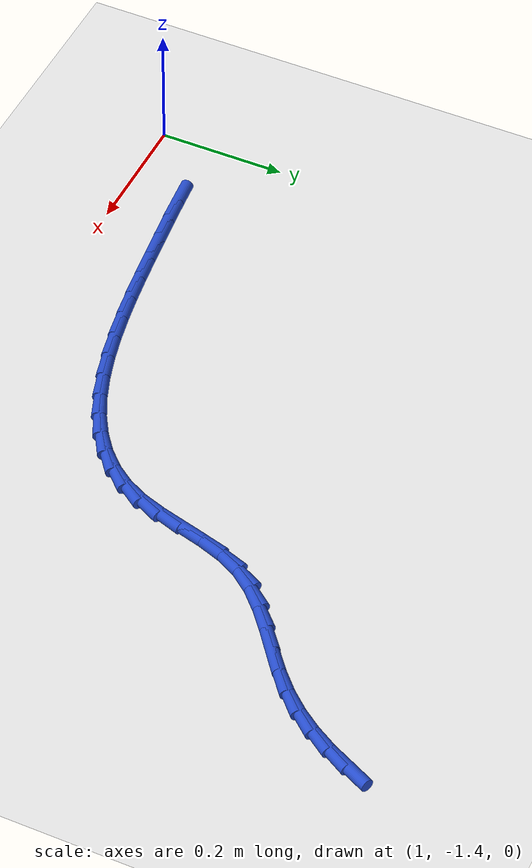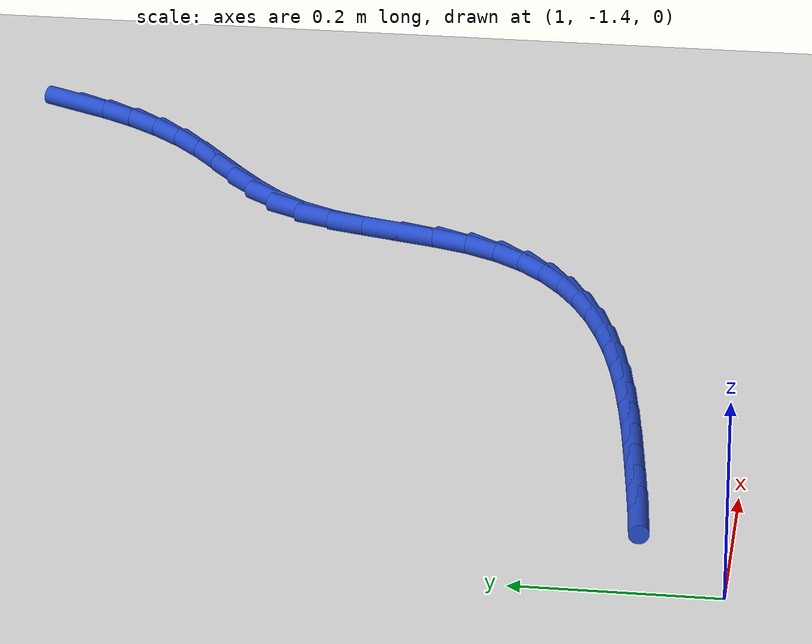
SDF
<sdf version="1.6">
 <world name="default">
  <model name="ground_plane">
   <static>1</static>
   <link name="link">
    <collision name="collision">
     <geometry><plane><normal>0 0 1</normal><size>100 100</size></plane></geometry>
     <surface><friction><ode><mu>100</mu><mu2>50</mu2></ode></friction></surface>
    </collision>
    <visual name="visual">
     <cast_shadows>0</cast_shadows>
     <geometry><plane><normal>0 0 1</normal><size>100 100</size></plane></geometry>
     <material>
      <script><uri>file://media/materials/scripts/gazebo.material</uri><name>Gazebo/WhiteGlow</name></script>
     </material>
    </visual>
   </link>
  </model>
  <model name="line">
   <link name="link_110">
    <pose>2.030792131386796 -0.6210621675817639 0.01 0 1.57 1.1239168759637137</pose>
    <collision name="collision">
     <geometry><cylinder><radius>0.01</radius><length>0.08</length></cylinder></geometry>
    </collision>
    <visual name="visual">
     <material>
      <script><name>Gazebo/Blue</name><uri>file://media/materials/scripts/gazebo.material</uri></script>
     </material>
     <geometry><cylinder><radius>0.01</radius><length>0.08</length></cylinder></geometry>
    </visual>
   </link>
   <link name="link_111">
    <pose>2.014340867695228 -0.6553919816335887 0.01 0 1.57 1.0438205597238692</pose>
    <collision name="collision">
     <geometry><cylinder><radius>0.01</radius><length>0.08</length></cylinder></geometry>
    </collision>
    <visual name="visual">
     <material>
      <script><name>Gazebo/Blue</name><uri>file://media/materials/scripts/gazebo.material</uri></script>
     </material>
     <geometry><cylinder><radius>0.01</radius><length>0.08</length></cylinder></geometry>
    </visual>
   </link>
   <link name="link_112">
    <pose>1.9953514913226962 -0.68802752912348 0.01 0 1.57 0.9535486442471789</pose>
    <collision name="collision">
     <geometry><cylinder><radius>0.01</radius><length>0.08</length></cylinder></geometry>
    </collision>
    <visual name="visual">
     <material>
      <script><name>Gazebo/Blue</name><uri>file://media/materials/scripts/gazebo.material</uri></script>
     </material>
     <geometry><cylinder><radius>0.01</radius><length>0.08</length></cylinder></geometry>
    </visual>
   </link>
   <link name="link_113">
    <pose>1.9735434283943016 -0.718753407592466 0.01 0 1.57 0.85431543339839</pose>
    <collision name="collision">
     <geometry><cylinder><radius>0.01</radius><length>0.08</length></cylinder></geometry>
    </collision>
    <visual name="visual">
     <material>
      <script><name>Gazebo/Blue</name><uri>file://media/materials/scripts/gazebo.material</uri></script>
     </material>
     <geometry><cylinder><radius>0.01</radius><length>0.08</length></cylinder></geometry>
    </visual>
   </link>
   <link name="link_114">
    <pose>1.948636105035143 -0.7473542145815713 0.01 0 1.57 0.7507832722630146</pose>
    <collision name="collision">
     <geometry><cylinder><radius>0.01</radius><length>0.08</length></cylinder></geometry>
    </collision>
    <visual name="visual">
     <material>
      <script><name>Gazebo/Blue</name><uri>file://media/materials/scripts/gazebo.material</uri></script>
     </material>
     <geometry><cylinder><radius>0.01</radius><length>0.08</length></cylinder></geometry>
    </visual>
   </link>
   <link name="link_115">
    <pose>1.9204306006758038 -0.7736716588637779 0.01 0 1.57 0.6779471716496512</pose>
    <collision name="collision">
     <geometry><cylinder><radius>0.01</radius><length>0.08</length></cylinder></geometry>
    </collision>
    <visual name="visual">
     <material>
      <script><name>Gazebo/Blue</name><uri>file://media/materials/scripts/gazebo.material</uri></script>
     </material>
     <geometry><cylinder><radius>0.01</radius><length>0.08</length></cylinder></geometry>
    </visual>
   </link>
   <link name="link_116">
    <pose>1.8898268281888364 -0.7983160124834981 0.01 0 1.57 0.6565695907384311</pose>
    <collision name="collision">
     <geometry><cylinder><radius>0.01</radius><length>0.08</length></cylinder></geometry>
    </collision>
    <visual name="visual">
     <material>
      <script><name>Gazebo/Blue</name><uri>file://media/materials/scripts/gazebo.material</uri></script>
     </material>
     <geometry><cylinder><radius>0.01</radius><length>0.08</length></cylinder></geometry>
    </visual>
   </link>
   <link name="link_117">
    <pose>1.858511809860532 -0.8224480798614734 0.01 0 1.57 0.6854046236780491</pose>
    <collision name="collision">
     <geometry><cylinder><radius>0.01</radius><length>0.08</length></cylinder></geometry>
    </collision>
    <visual name="visual">
     <material>
      <script><name>Gazebo/Blue</name><uri>file://media/materials/scripts/gazebo.material</uri></script>
     </material>
     <geometry><cylinder><radius>0.01</radius><length>0.08</length></cylinder></geometry>
    </visual>
   </link>
   <link name="link_118">
    <pose>1.8281896928328079 -0.847240643152794 0.01 0 1.57 0.7669816196945624</pose>
    <collision name="collision">
     <geometry><cylinder><radius>0.01</radius><length>0.08</length></cylinder></geometry>
    </collision>
    <visual name="visual">
     <material>
      <script><name>Gazebo/Blue</name><uri>file://media/materials/scripts/gazebo.material</uri></script>
     </material>
     <geometry><cylinder><radius>0.01</radius><length>0.08</length></cylinder></geometry>
    </visual>
   </link>
   <link name="link_119">
    <pose>1.8005646242475795 -0.8738664845125512 0.01 0 1.57 0.9060454748563066</pose>
    <collision name="collision">
     <geometry><cylinder><radius>0.01</radius><length>0.08</length></cylinder></geometry>
    </collision>
    <visual name="visual">
     <material>
      <script><name>Gazebo/Blue</name><uri>file://media/materials/scripts/gazebo.material</uri></script>
     </material>
     <geometry><cylinder><radius>0.01</radius><length>0.08</length></cylinder></geometry>
    </visual>
   </link>
   <link name="link_120">
    <pose>1.7773407512467643 -0.9034983860958358 0.01 0 1.57 1.0924008980881115</pose>
    <collision name="collision">
     <geometry><cylinder><radius>0.01</radius><length>0.08</length></cylinder></geometry>
    </collision>
    <visual name="visual">
     <material>
      <script><name>Gazebo/Blue</name><uri>file://media/materials/scripts/gazebo.material</uri></script>
     </material>
     <geometry><cylinder><radius>0.01</radius><length>0.08</length></cylinder></geometry>
    </visual>
   </link>
   <link name="link_121">
    <pose>1.7599205660133777 -0.9370909229879482 0.01 0 1.57 1.238586335258625</pose>
    <collision name="collision">
     <geometry><cylinder><radius>0.01</radius><length>0.08</length></cylinder></geometry>
    </collision>
    <visual name="visual">
     <material>
      <script><name>Gazebo/Blue</name><uri>file://media/materials/scripts/gazebo.material</uri></script>
     </material>
     <geometry><cylinder><radius>0.01</radius><length>0.08</length></cylinder></geometry>
    </visual>
   </link>
   <link name="link_122">
    <pose>1.7472488814208817 -0.973820867573469 0.01 0 1.57 1.310309039224659</pose>
    <collision name="collision">
     <geometry><cylinder><radius>0.01</radius><length>0.08</length></cylinder></geometry>
    </collision>
    <visual name="visual">
     <material>
      <script><name>Gazebo/Blue</name><uri>file://media/materials/scripts/gazebo.material</uri></script>
     </material>
     <geometry><cylinder><radius>0.01</radius><length>0.08</length></cylinder></geometry>
    </visual>
   </link>
   <link name="link_123">
    <pose>1.7370728479505804 -1.01199864347168 0.01 0 1.57 1.3144679871416611</pose>
    <collision name="collision">
     <geometry><cylinder><radius>0.01</radius><length>0.08</length></cylinder></geometry>
    </collision>
    <visual name="visual">
     <material>
      <script><name>Gazebo/Blue</name><uri>file://media/materials/scripts/gazebo.material</uri></script>
     </material>
     <geometry><cylinder><radius>0.01</radius><length>0.08</length></cylinder></geometry>
    </visual>
   </link>
   <link name="link_124">
    <pose>1.72713157204014 -1.049928855510758 0.01 0 1.57 1.2497546679443474</pose>
    <collision name="collision">
     <geometry><cylinder><radius>0.01</radius><length>0.08</length></cylinder></geometry>
    </collision>
    <visual name="visual">
     <material>
      <script><name>Gazebo/Blue</name><uri>file://media/materials/scripts/gazebo.material</uri></script>
     </material>
     <geometry><cylinder><radius>0.01</radius><length>0.08</length></cylinder></geometry>
    </visual>
   </link>
   <link name="link_125">
    <pose>1.715164160127222 -1.0859161085188769 0.01 0 1.57 1.1122931364111353</pose>
    <collision name="collision">
     <geometry><cylinder><radius>0.01</radius><length>0.08</length></cylinder></geometry>
    </collision>
    <visual name="visual">
     <material>
      <script><name>Gazebo/Blue</name><uri>file://media/materials/scripts/gazebo.material</uri></script>
     </material>
     <geometry><cylinder><radius>0.01</radius><length>0.08</length></cylinder></geometry>
    </visual>
   </link>
   <link name="link_126">
    <pose>1.6991196862870743 -1.118422047684889 0.01 0 1.57 0.9503992452951348</pose>
    <collision name="collision">
     <geometry><cylinder><radius>0.01</radius><length>0.08</length></cylinder></geometry>
    </collision>
    <visual name="visual">
     <material>
      <script><name>Gazebo/Blue</name><uri>file://media/materials/scripts/gazebo.material</uri></script>
     </material>
     <geometry><cylinder><radius>0.01</radius><length>0.08</length></cylinder></geometry>
    </visual>
   </link>
   <link name="link_127">
    <pose>1.6785982178808825 -1.1471431398305354 0.01 0 1.57 0.7974145459164313</pose>
    <collision name="collision">
     <geometry><cylinder><radius>0.01</radius><length>0.08</length></cylinder></geometry>
    </collision>
    <visual name="visual">
     <material>
      <script><name>Gazebo/Blue</name><uri>file://media/materials/scripts/gazebo.material</uri></script>
     </material>
     <geometry><cylinder><radius>0.01</radius><length>0.08</length></cylinder></geometry>
    </visual>
   </link>
   <link name="link_128">
    <pose>1.653980484830239 -1.1723597299954707 0.01 0 1.57 0.6602185341205669</pose>
    <collision name="collision">
     <geometry><cylinder><radius>0.01</radius><length>0.08</length></cylinder></geometry>
    </collision>
    <visual name="visual">
     <material>
      <script><name>Gazebo/Blue</name><uri>file://media/materials/scripts/gazebo.material</uri></script>
     </material>
     <geometry><cylinder><radius>0.01</radius><length>0.08</length></cylinder></geometry>
    </visual>
   </link>
   <link name="link_129">
    <pose>1.6256518603257202 -1.1943556360432768 0.01 0 1.57 0.5419640523705107</pose>
    <collision name="collision">
     <geometry><cylinder><radius>0.01</radius><length>0.08</length></cylinder></geometry>
    </collision>
    <visual name="visual">
     <material>
      <script><name>Gazebo/Blue</name><uri>file://media/materials/scripts/gazebo.material</uri></script>
     </material>
     <geometry><cylinder><radius>0.01</radius><length>0.08</length></cylinder></geometry>
    </visual>
   </link>
   <link name="link_130">
    <pose>1.5939977175579028 -1.2134146758375375 0.01 0 1.57 0.44282797561085124</pose>
    <collision name="collision">
     <geometry><cylinder><radius>0.01</radius><length>0.08</length></cylinder></geometry>
    </collision>
    <visual name="visual">
     <material>
      <script><name>Gazebo/Blue</name><uri>file://media/materials/scripts/gazebo.material</uri></script>
     </material>
     <geometry><cylinder><radius>0.01</radius><length>0.08</length></cylinder></geometry>
    </visual>
   </link>
   <link name="link_131">
    <pose>1.5594034297173645 -1.2298206672418357 0.01 0 1.57 0.3612666891520093</pose>
    <collision name="collision">
     <geometry><cylinder><radius>0.01</radius><length>0.08</length></cylinder></geometry>
    </collision>
    <visual name="visual">
     <material>
      <script><name>Gazebo/Blue</name><uri>file://media/materials/scripts/gazebo.material</uri></script>
     </material>
     <geometry><cylinder><radius>0.01</radius><length>0.08</length></cylinder></geometry>
    </visual>
   </link>
   <link name="link_132">
    <pose>1.5222543699946818 -1.2438574281197539 0.01 0 1.57 0.2950884023429209</pose>
    <collision name="collision">
     <geometry><cylinder><radius>0.01</radius><length>0.08</length></cylinder></geometry>
    </collision>
    <visual name="visual">
     <material>
      <script><name>Gazebo/Blue</name><uri>file://media/materials/scripts/gazebo.material</uri></script>
     </material>
     <geometry><cylinder><radius>0.01</radius><length>0.08</length></cylinder></geometry>
    </visual>
   </link>
   <link name="link_133">
    <pose>1.4829359115804306 -1.2558087763348753 0.01 0 1.57 0.2420944413560988</pose>
    <collision name="collision">
     <geometry><cylinder><radius>0.01</radius><length>0.08</length></cylinder></geometry>
    </collision>
    <visual name="visual">
     <material>
      <script><name>Gazebo/Blue</name><uri>file://media/materials/scripts/gazebo.material</uri></script>
     </material>
     <geometry><cylinder><radius>0.01</radius><length>0.08</length></cylinder></geometry>
    </visual>
   </link>
   <link name="link_134">
    <pose>1.441833427665188 -1.2659585297507827 0.01 0 1.57 0.2003744474546729</pose>
    <collision name="collision">
     <geometry><cylinder><radius>0.01</radius><length>0.08</length></cylinder></geometry>
    </collision>
    <visual name="visual">
     <material>
      <script><name>Gazebo/Blue</name><uri>file://media/materials/scripts/gazebo.material</uri></script>
     </material>
     <geometry><cylinder><radius>0.01</radius><length>0.08</length></cylinder></geometry>
    </visual>
   </link>
   <link name="link_135">
    <pose>1.3993322914395319 -1.274590506231059 0.01 0 1.57 0.16840281681212324</pose>
    <collision name="collision">
     <geometry><cylinder><radius>0.01</radius><length>0.08</length></cylinder></geometry>
    </collision>
    <visual name="visual">
     <material>
      <script><name>Gazebo/Blue</name><uri>file://media/materials/scripts/gazebo.material</uri></script>
     </material>
     <geometry><cylinder><radius>0.01</radius><length>0.08</length></cylinder></geometry>
    </visual>
   </link>
   <link name="link_136">
    <pose>1.3558178760940383 -1.2819885236392874 0.01 0 1.57 0.14504439122050503</pose>
    <collision name="collision">
     <geometry><cylinder><radius>0.01</radius><length>0.08</length></cylinder></geometry>
    </collision>
    <visual name="visual">
     <material>
      <script><name>Gazebo/Blue</name><uri>file://media/materials/scripts/gazebo.material</uri></script>
     </material>
     <geometry><cylinder><radius>0.01</radius><length>0.08</length></cylinder></geometry>
    </visual>
   </link>
   <link name="link_137">
    <pose>1.311675554819284 -1.2884363998390505 0.01 0 1.57 0.12953027072023898</pose>
    <collision name="collision">
     <geometry><cylinder><radius>0.01</radius><length>0.08</length></cylinder></geometry>
    </collision>
    <visual name="visual">
     <material>
      <script><name>Gazebo/Blue</name><uri>file://media/materials/scripts/gazebo.material</uri></script>
     </material>
     <geometry><cylinder><radius>0.01</radius><length>0.08</length></cylinder></geometry>
    </visual>
   </link>
   <link name="link_138">
    <pose>1.2672907008058463 -1.2942179526939315 0.01 0 1.57 0.12143395670664524</pose>
    <collision name="collision">
     <geometry><cylinder><radius>0.01</radius><length>0.08</length></cylinder></geometry>
    </collision>
    <visual name="visual">
     <material>
      <script><name>Gazebo/Blue</name><uri>file://media/materials/scripts/gazebo.material</uri></script>
     </material>
     <geometry><cylinder><radius>0.01</radius><length>0.08</length></cylinder></geometry>
    </visual>
   </link>
   <link name="link_139">
    <pose>1.2230486872443023 -1.299617000067513 0.01 0 1.57 0.1190533603680602</pose>
    <collision name="collision">
     <geometry><cylinder><radius>0.01</radius><length>0.08</length></cylinder></geometry>
    </collision>
    <visual name="visual">
     <material>
      <script><name>Gazebo/Blue</name><uri>file://media/materials/scripts/gazebo.material</uri></script>
     </material>
     <geometry><cylinder><radius>0.01</radius><length>0.08</length></cylinder></geometry>
    </visual>
   </link>
   <link name="link_140">
    <pose>1.179306240526333 -1.304849429697939 0.01 0 1.57 0.11216538739787148</pose>
    <collision name="collision">
     <geometry><cylinder><radius>0.01</radius><length>0.08</length></cylinder></geometry>
    </collision>
    <visual name="visual">
     <material>
      <script><name>Gazebo/Blue</name><uri>file://media/materials/scripts/gazebo.material</uri></script>
     </material>
     <geometry><cylinder><radius>0.01</radius><length>0.08</length></cylinder></geometry>
    </visual>
   </link>
   <link name="link_141">
    <pose>1.136238487248689 -1.3097005019120722 0.01 0 1.57 0.09633979270217664</pose>
    <collision name="collision">
     <geometry><cylinder><radius>0.01</radius><length>0.08</length></cylinder></geometry>
    </collision>
    <visual name="visual">
     <material>
      <script><name>Gazebo/Blue</name><uri>file://media/materials/scripts/gazebo.material</uri></script>
     </material>
     <geometry><cylinder><radius>0.01</radius><length>0.08</length></cylinder></geometry>
    </visual>
   </link>
  </model>
 </world>
</sdf>
